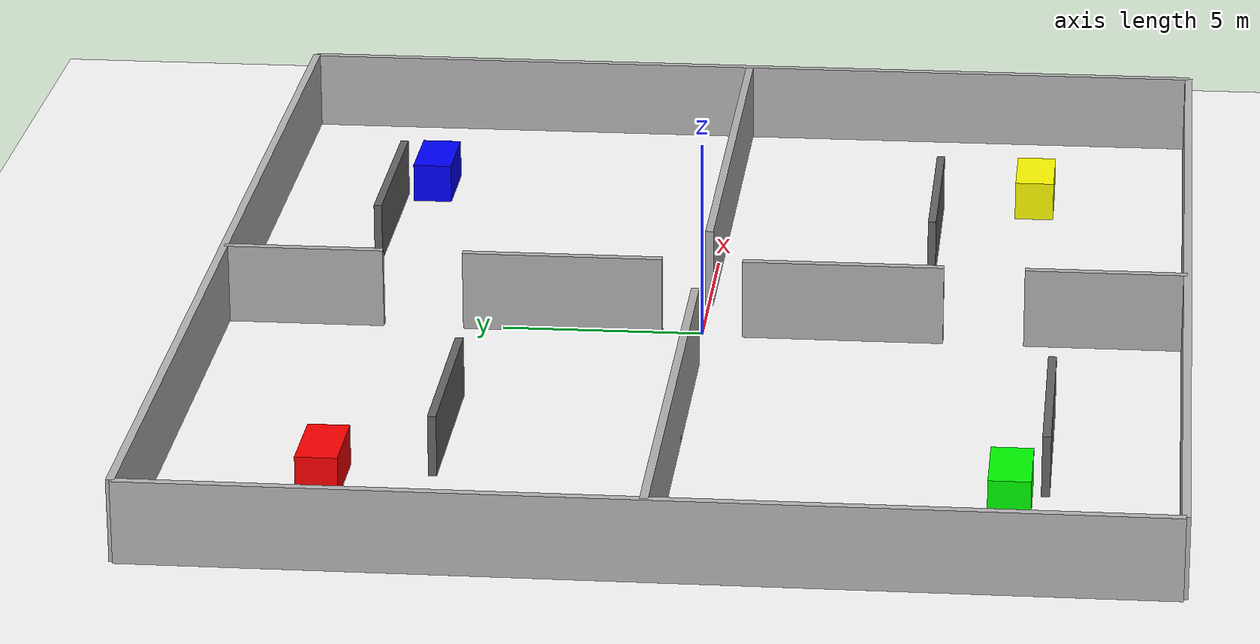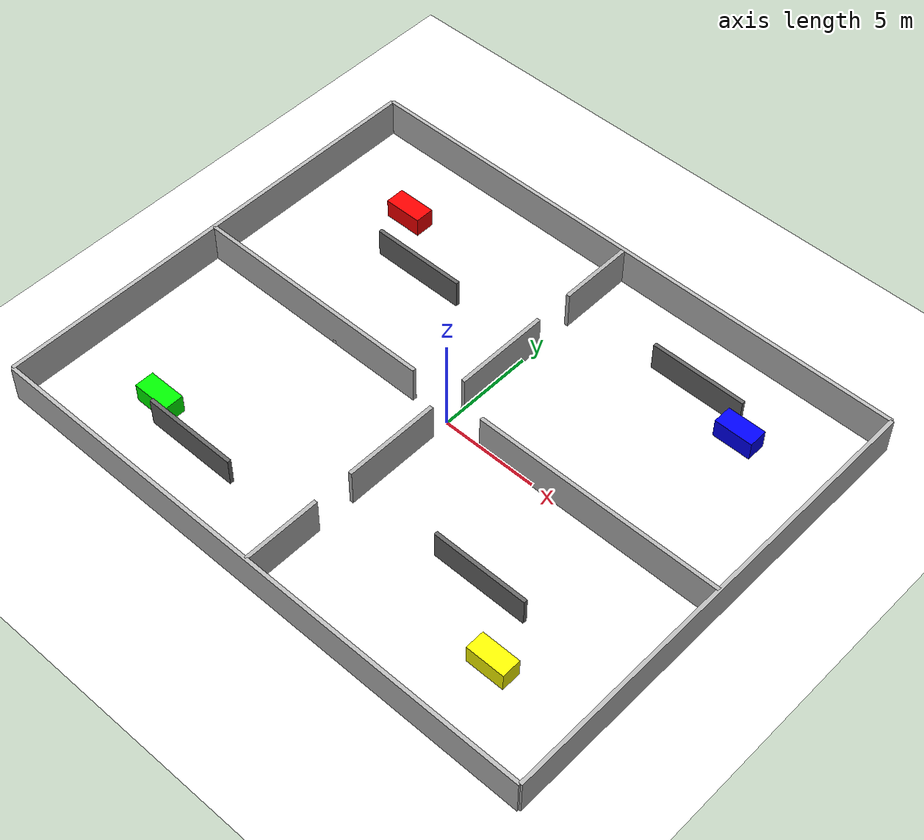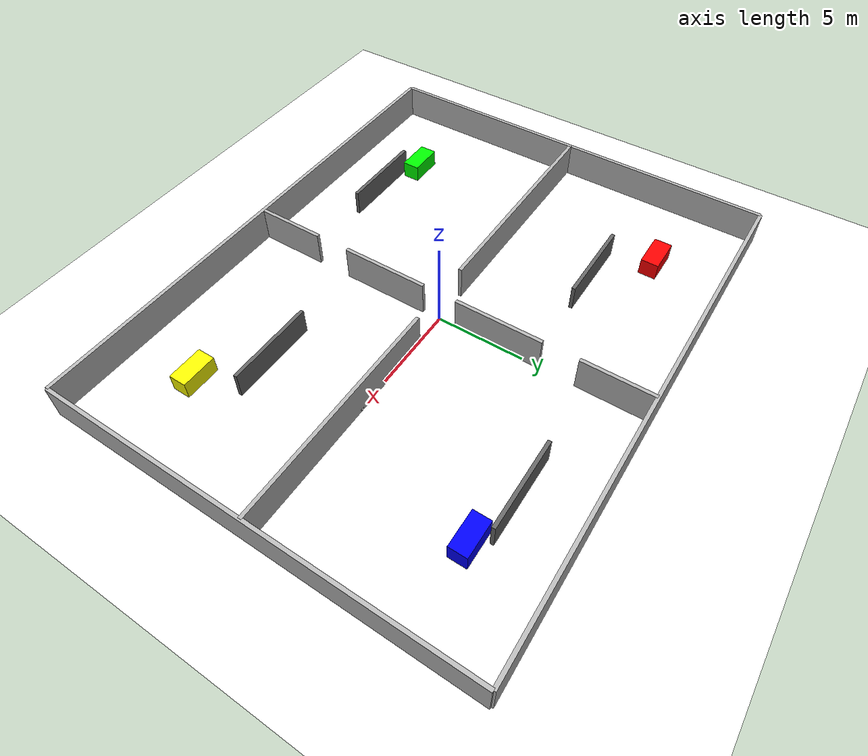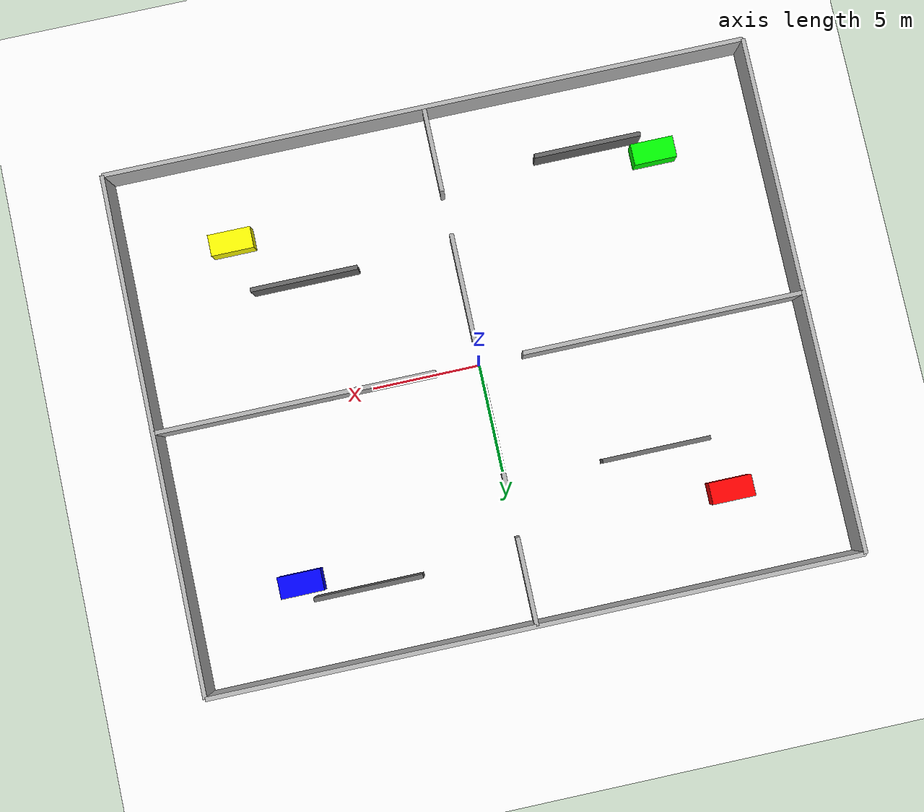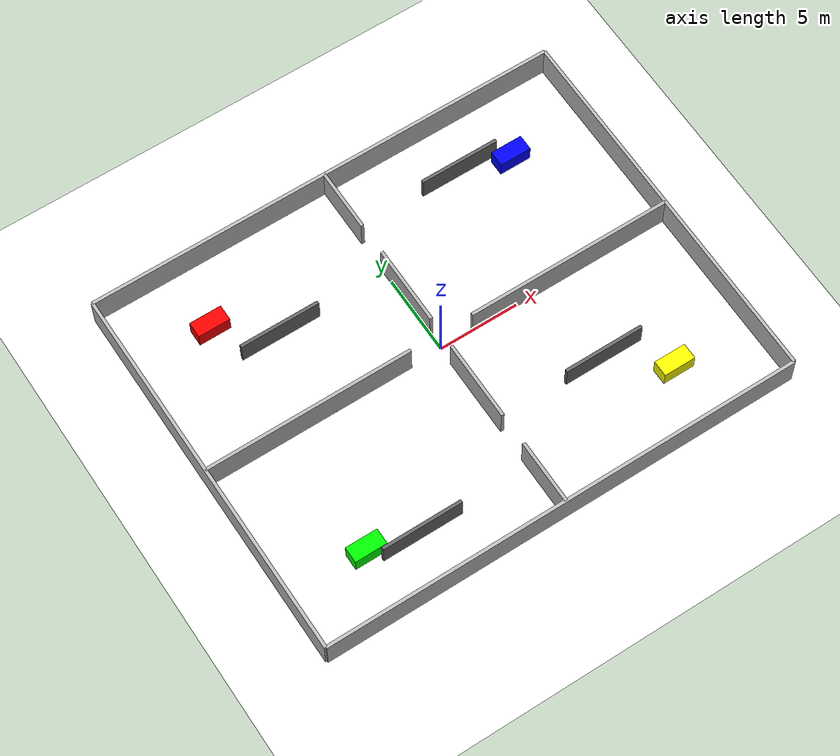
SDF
<?xml version="1.0" ?>
<sdf version="1.7">
  <world name="warehouse_world">

<!-- Plugins needed for the simulation                     -->
<!-- Gazebo uses system plugins to enable core features   -->

<!-- Physics engine: enables dynamics simulation
     (gravity, collisions, wheel motion, forces) -->
<plugin filename="gz-sim-physics-system"
        name="gz::sim::systems::Physics"/>

<!-- User commands: allows external commands such as
     spawning or deleting entities from ROS or CLI -->
<plugin filename="gz-sim-user-commands-system"
        name="gz::sim::systems::UserCommands"/>

<!-- Scene broadcaster: sends simulation updates to
     the GUI so objects move correctly in the viewer -->
<plugin filename="gz-sim-scene-broadcaster-system"
        name="gz::sim::systems::SceneBroadcaster"/>

<!-- Sensors system: enables simulated sensors such as
     LiDAR, cameras, IMU, etc. Without this plugin
     sensors exist but do not produce data -->
<plugin filename="gz-sim-sensors-system"
        name="gz::sim::systems::Sensors">

  <!-- ogre2 supports EGL/headless rendering (required for macOS Docker) -->
  <render_engine>ogre2</render_engine>

</plugin>

    <!-- Sun -->
    <include>
      <uri>https://fuel.gazebosim.org/1.0/OpenRobotics/models/Sun</uri>
    </include>

<!-- White floor -->
<model name="white_floor">
  <static>true</static>
  <pose>0 0 0 0 0 0</pose>

  <link name="floor_link">

    <collision name="collision">
      <geometry>
        <plane>
          <normal>0 0 1</normal>
          <size>40 40</size>
        </plane>
      </geometry>
    </collision>

    <visual name="visual">
      <geometry>
        <plane>
          <normal>0 0 1</normal>
          <size>40 40</size>
        </plane>
      </geometry>

      <material>
        <ambient>1 1 1 1</ambient>
        <diffuse>1 1 1 1</diffuse>
        <specular>0.1 0.1 0.1 1</specular>
      </material>

    </visual>

  </link>
</model>
    <!-- OUTER WALLS -->

    <model name="wall_north">
      <static>true</static>
      <pose>0 12 1 0 0 0</pose>
      <link name="link">
        <collision name="collision">
          <geometry><box><size>30 0.2 2</size></box></geometry>
        </collision>
        <visual name="visual">
          <geometry><box><size>30 0.2 2</size></box></geometry>
        </visual>
      </link>
    </model>

    <model name="wall_south">
      <static>true</static>
      <pose>0 -12 1 0 0 0</pose>
      <link name="link">
        <collision name="collision">
          <geometry><box><size>30 0.2 2</size></box></geometry>
        </collision>
        <visual name="visual">
          <geometry><box><size>30 0.2 2</size></box></geometry>
        </visual>
      </link>
    </model>

    <model name="wall_east">
      <static>true</static>
      <pose>15 0 1 0 0 0</pose>
      <link name="link">
        <collision name="collision">
          <geometry><box><size>0.2 24 2</size></box></geometry>
        </collision>
        <visual name="visual">
          <geometry><box><size>0.2 24 2</size></box></geometry>
        </visual>
      </link>
    </model>

    <model name="wall_west">
      <static>true</static>
      <pose>-15 0 1 0 0 0</pose>
      <link name="link">
        <collision name="collision">
          <geometry><box><size>0.2 24 2</size></box></geometry>
        </collision>
        <visual name="visual">
          <geometry><box><size>0.2 24 2</size></box></geometry>
        </visual>
      </link>
    </model>

    <!-- INTERNAL WALLS -->

    <!-- Horizontal wall across the middle with one central opening -->
    <model name="mid_wall_left">
      <static>true</static>
      <pose>-8.5 0 1 0 0 0</pose>
      <link name="link">
        <collision name="collision">
          <geometry><box><size>13 0.2 2</size></box></geometry>
        </collision>
        <visual name="visual">
          <geometry><box><size>13 0.2 2</size></box></geometry>
          <material>
            <ambient>0.7 0.7 0.7 1</ambient>
            <diffuse>0.7 0.7 0.7 1</diffuse>
          </material>
        </visual>
      </link>
    </model>

    <model name="mid_wall_right">
      <static>true</static>
      <pose>8.5 0 1 0 0 0</pose>
      <link name="link">
        <collision name="collision">
          <geometry><box><size>13 0.2 2</size></box></geometry>
        </collision>
        <visual name="visual">
          <geometry><box><size>13 0.2 2</size></box></geometry>
          <material>
            <ambient>0.7 0.7 0.7 1</ambient>
            <diffuse>0.7 0.7 0.7 1</diffuse>
          </material>
        </visual>
      </link>
    </model>

    <!-- Vertical wall across the middle with offset openings -->
    <!-- top segment -->
    <model name="mid_vertical_top">
      <static>true</static>
      <pose>0 10 1 0 0 0</pose>
      <link name="link">
        <collision name="collision">
          <geometry><box><size>0.2 4 2</size></box></geometry>
        </collision>
        <visual name="visual">
          <geometry><box><size>0.2 4 2</size></box></geometry>
          <material>
            <ambient>0.7 0.7 0.7 1</ambient>
            <diffuse>0.7 0.7 0.7 1</diffuse>
          </material>
        </visual>
      </link>
    </model>

    <!-- upper-middle segment -->
    <model name="mid_vertical_upper">
      <static>true</static>
      <pose>0 3.5 1 0 0 0</pose>
      <link name="link">
        <collision name="collision">
          <geometry><box><size>0.2 5 2</size></box></geometry>
        </collision>
        <visual name="visual">
          <geometry><box><size>0.2 5 2</size></box></geometry>
          <material>
            <ambient>0.7 0.7 0.7 1</ambient>
            <diffuse>0.7 0.7 0.7 1</diffuse>
          </material>
        </visual>
      </link>
    </model>

    <!-- lower-middle segment -->
    <model name="mid_vertical_lower">
      <static>true</static>
      <pose>0 -3.5 1 0 0 0</pose>
      <link name="link">
        <collision name="collision">
          <geometry><box><size>0.2 5 2</size></box></geometry>
        </collision>
        <visual name="visual">
          <geometry><box><size>0.2 5 2</size></box></geometry>
          <material>
            <ambient>0.7 0.7 0.7 1</ambient>
            <diffuse>0.7 0.7 0.7 1</diffuse>
          </material>
        </visual>
      </link>
    </model>

    <!-- bottom segment -->
    <model name="mid_vertical_bottom">
      <static>true</static>
      <pose>0 -10 1 0 0 0</pose>
      <link name="link">
        <collision name="collision">
          <geometry><box><size>0.2 4 2</size></box></geometry>
        </collision>
        <visual name="visual">
          <geometry><box><size>0.2 4 2</size></box></geometry>
          <material>
            <ambient>0.7 0.7 0.7 1</ambient>
            <diffuse>0.7 0.7 0.7 1</diffuse>
          </material>
        </visual>
      </link>
    </model>

    <!-- LOCAL BLOCKERS / AISLE OBSTACLES -->

    <!-- Top-left quadrant blocker -->
    <model name="blocker_tl">
      <static>true</static>
      <pose>-7 5.5 0.75 0 0 0</pose>
      <link name="link">
        <collision name="collision">
          <geometry><box><size>5 0.2 1.5</size></box></geometry>
        </collision>
        <visual name="visual">
          <geometry><box><size>5 0.2 1.5</size></box></geometry>
          <material>
            <ambient>0.4 0.4 0.4 1</ambient>
            <diffuse>0.4 0.4 0.4 1</diffuse>
          </material>
        </visual>
      </link>
    </model>

    <!-- Top-right quadrant blocker -->
    <model name="blocker_tr">
      <static>true</static>
      <pose>7 8.8 0.75 0 0 0</pose>
      <link name="link">
        <collision name="collision">
          <geometry><box><size>5 0.2 1.5</size></box></geometry>
        </collision>
        <visual name="visual">
          <geometry><box><size>5 0.2 1.5</size></box></geometry>
          <material>
            <ambient>0.4 0.4 0.4 1</ambient>
            <diffuse>0.4 0.4 0.4 1</diffuse>
          </material>
        </visual>
      </link>
    </model>

    <!-- Bottom-left quadrant blocker -->
    <model name="blocker_bl">
      <static>true</static>
      <pose>-7 -8.8 0.75 0 0 0</pose>
      <link name="link">
        <collision name="collision">
          <geometry><box><size>5 0.2 1.5</size></box></geometry>
        </collision>
        <visual name="visual">
          <geometry><box><size>5 0.2 1.5</size></box></geometry>
          <material>
            <ambient>0.4 0.4 0.4 1</ambient>
            <diffuse>0.4 0.4 0.4 1</diffuse>
          </material>
        </visual>
      </link>
    </model>

    <!-- Bottom-right quadrant blocker -->
    <model name="blocker_br">
      <static>true</static>
      <pose>7 -5.5 0.75 0 0 0</pose>
      <link name="link">
        <collision name="collision">
          <geometry><box><size>5 0.2 1.5</size></box></geometry>
        </collision>
        <visual name="visual">
          <geometry><box><size>5 0.2 1.5</size></box></geometry>
          <material>
            <ambient>0.4 0.4 0.4 1</ambient>
            <diffuse>0.4 0.4 0.4 1</diffuse>
          </material>
        </visual>
      </link>
    </model>

    <!-- SHELVES / COLORED BOXES -->

    <model name="shelf_red">
      <static>true</static>
      <pose>-10 8 0.5 0 0 0</pose>
      <link name="link">
        <collision name="collision">
          <geometry><box><size>2 1 1</size></box></geometry>
        </collision>
        <visual name="visual">
          <geometry><box><size>2 1 1</size></box></geometry>
          <material>
            <ambient>1 0 0 1</ambient>
            <diffuse>1 0 0 1</diffuse>
          </material>
        </visual>
      </link>
    </model>

    <model name="shelf_blue">
      <static>true</static>
      <pose>10 8 0.5 0 0 0</pose>
      <link name="link">
        <collision name="collision">
          <geometry><box><size>2 1 1</size></box></geometry>
        </collision>
        <visual name="visual">
          <geometry><box><size>2 1 1</size></box></geometry>
          <material>
            <ambient>0 0 1 1</ambient>
            <diffuse>0 0 1 1</diffuse>
          </material>
        </visual>
      </link>
    </model>

    <model name="shelf_green">
      <static>true</static>
      <pose>-10 -8 0.5 0 0 0</pose>
      <link name="link">
        <collision name="collision">
          <geometry><box><size>2 1 1</size></box></geometry>
        </collision>
        <visual name="visual">
          <geometry><box><size>2 1 1</size></box></geometry>
          <material>
            <ambient>0 1 0 1</ambient>
            <diffuse>0 1 0 1</diffuse>
          </material>
        </visual>
      </link>
    </model>

    <model name="shelf_yellow">
      <static>true</static>
      <pose>10 -8 0.5 0 0 0</pose>
      <link name="link">
        <collision name="collision">
          <geometry><box><size>2 1 1</size></box></geometry>
        </collision>
        <visual name="visual">
          <geometry><box><size>2 1 1</size></box></geometry>
          <material>
            <ambient>1 1 0 1</ambient>
            <diffuse>1 1 0 1</diffuse>
          </material>
        </visual>
      </link>
    </model>

    <!-- ArUco marker 42 (Station A): south face of mid_wall_left, NW quadrant -->
    <!-- Rotated 90deg around Z so thin face points in +-Y (visible from south) -->
    <include>
      <uri>model://aruco_marker_42</uri>
      <name>aruco_marker_42</name>
      <pose>-7 -0.103 0.107 0 0 1.5708</pose>
    </include>

    <!-- ArUco marker 67 (Station B): north face of mid_wall_right, SE quadrant -->
    <!-- Rotated 90deg around Z so thin face points in +-Y (visible from north) -->
    <include>
      <uri>model://aruco_marker_67</uri>
      <name>aruco_marker_67</name>
      <pose>7 0.103 0.107 0 0 1.5708</pose>
    </include>

  </world>
</sdf>

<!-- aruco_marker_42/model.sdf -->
<sdf version="1.7">
  <model name="aruco_marker_42">
    <static>true</static>
    <link name="link">
      <visual name="marker_visual">
        <geometry>
          <box><size>0.005 0.18 0.18</size></box>
        </geometry>
        <material>
          <diffuse>1 1 1 1</diffuse>
          <pbr>
            <metal>
              <albedo_map>materials/textures/aruco_42.png</albedo_map>
            </metal>
          </pbr>
        </material>
      </visual>
      <collision name="marker_collision">
        <geometry>
          <box><size>0.005 0.18 0.18</size></box>
        </geometry>
      </collision>
    </link>
  </model>
</sdf>

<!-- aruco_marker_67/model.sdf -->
<sdf version="1.7">
  <model name="aruco_marker_67">
    <static>true</static>
    <link name="link">
      <!-- Thin placard: 0.18m x 0.18m marker face, 0.005m thick -->
      <visual name="marker_visual">
        <geometry>
          <box><size>0.005 0.18 0.18</size></box>
        </geometry>
        <material>
          <diffuse>1 1 1 1</diffuse>
          <pbr>
            <metal>
              <albedo_map>materials/textures/marker67.png</albedo_map>
            </metal>
          </pbr>
        </material>
      </visual>
      <collision name="marker_collision">
        <geometry>
          <box><size>0.005 0.18 0.18</size></box>
        </geometry>
      </collision>
    </link>
  </model>
</sdf>
